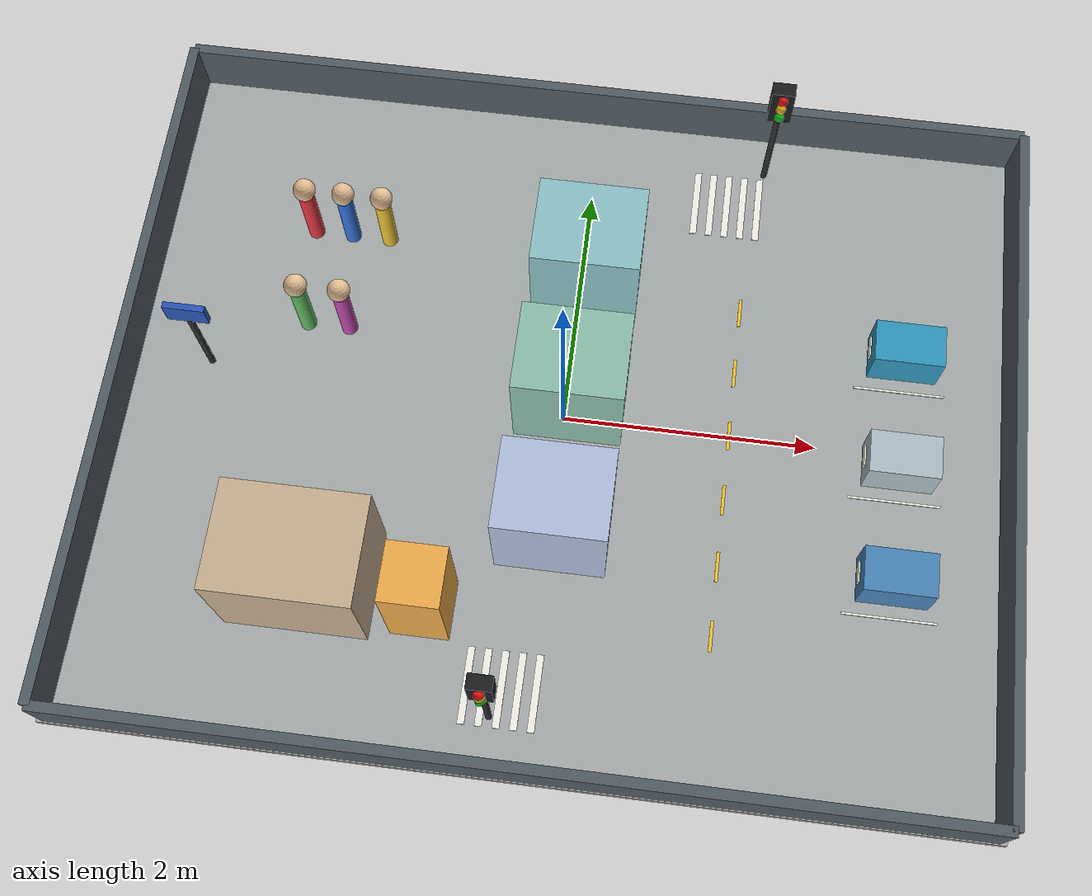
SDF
<?xml version="1.0" encoding="utf-8"?>
<sdf version="1.6">
  <world name="smart_community">
    <gravity>0 0 -9.8</gravity>
    <physics type="ode">
      <max_step_size>0.001</max_step_size>
      <real_time_update_rate>1000</real_time_update_rate>
    </physics>
    <scene>
      <ambient>0.65 0.65 0.65 1</ambient>
      <background>0.85 0.9 0.95 1</background>
    </scene>
    <light name="sun" type="directional">
      <pose>0 0 8 0 0 0</pose>
      <diffuse>0.85 0.85 0.85 1</diffuse>
      <direction>0.3 -0.3 -1</direction>
    </light>
    <model name="ground">
      <static>true</static>
      <pose>0 0 -0.03 0 0 0</pose>
      <link name="body">
        <collision name="collision">
          <geometry>
            <box>
              <size>7.1 5.7 0.06</size>
            </box>
          </geometry>
        </collision>
        <visual name="visual">
          <geometry>
            <box>
              <size>7.1 5.7 0.06</size>
            </box>
          </geometry>
          <material>
            <ambient>0.65 0.67 0.67 1</ambient>
            <diffuse>0.65 0.67 0.67 1</diffuse>
          </material>
        </visual>
      </link>
    </model>
    <model name="north_wall">
      <static>true</static>
      <pose>0 2.8 0.22 0 0 0</pose>
      <link name="body">
        <collision name="collision">
          <geometry>
            <box>
              <size>7 0.08 0.44</size>
            </box>
          </geometry>
        </collision>
        <visual name="visual">
          <geometry>
            <box>
              <size>7 0.08 0.44</size>
            </box>
          </geometry>
          <material>
            <ambient>0.32 0.36 0.39 1</ambient>
            <diffuse>0.32 0.36 0.39 1</diffuse>
          </material>
        </visual>
      </link>
    </model>
    <model name="south_wall">
      <static>true</static>
      <pose>0 -2.8 0.22 0 0 0</pose>
      <link name="body">
        <collision name="collision">
          <geometry>
            <box>
              <size>7 0.08 0.44</size>
            </box>
          </geometry>
        </collision>
        <visual name="visual">
          <geometry>
            <box>
              <size>7 0.08 0.44</size>
            </box>
          </geometry>
          <material>
            <ambient>0.32 0.36 0.39 1</ambient>
            <diffuse>0.32 0.36 0.39 1</diffuse>
          </material>
        </visual>
      </link>
    </model>
    <model name="west_wall">
      <static>true</static>
      <pose>-3.5 0 0.22 0 0 0</pose>
      <link name="body">
        <collision name="collision">
          <geometry>
            <box>
              <size>0.08 5.6 0.44</size>
            </box>
          </geometry>
        </collision>
        <visual name="visual">
          <geometry>
            <box>
              <size>0.08 5.6 0.44</size>
            </box>
          </geometry>
          <material>
            <ambient>0.32 0.36 0.39 1</ambient>
            <diffuse>0.32 0.36 0.39 1</diffuse>
          </material>
        </visual>
      </link>
    </model>
    <model name="east_wall">
      <static>true</static>
      <pose>3.5 0 0.22 0 0 0</pose>
      <link name="body">
        <collision name="collision">
          <geometry>
            <box>
              <size>0.08 5.6 0.44</size>
            </box>
          </geometry>
        </collision>
        <visual name="visual">
          <geometry>
            <box>
              <size>0.08 5.6 0.44</size>
            </box>
          </geometry>
          <material>
            <ambient>0.32 0.36 0.39 1</ambient>
            <diffuse>0.32 0.36 0.39 1</diffuse>
          </material>
        </visual>
      </link>
    </model>
    <model name="building_A">
      <static>true</static>
      <pose>0.05 1.25 0.48 0 0 0</pose>
      <link name="body">
        <collision name="collision">
          <geometry>
            <box>
              <size>0.85 0.7 0.96</size>
            </box>
          </geometry>
        </collision>
        <visual name="visual">
          <geometry>
            <box>
              <size>0.85 0.7 0.96</size>
            </box>
          </geometry>
          <material>
            <ambient>0.55 0.76 0.78 1</ambient>
            <diffuse>0.55 0.76 0.78 1</diffuse>
          </material>
        </visual>
      </link>
    </model>
    <model name="building_B">
      <static>true</static>
      <pose>0.05 0.18 0.48 0 0 0</pose>
      <link name="body">
        <collision name="collision">
          <geometry>
            <box>
              <size>0.85 0.7 0.96</size>
            </box>
          </geometry>
        </collision>
        <visual name="visual">
          <geometry>
            <box>
              <size>0.85 0.7 0.96</size>
            </box>
          </geometry>
          <material>
            <ambient>0.55 0.75 0.67 1</ambient>
            <diffuse>0.55 0.75 0.67 1</diffuse>
          </material>
        </visual>
      </link>
    </model>
    <model name="building_C">
      <static>true</static>
      <pose>0.05 -0.9 0.48 0 0 0</pose>
      <link name="body">
        <collision name="collision">
          <geometry>
            <box>
              <size>0.85 0.7 0.96</size>
            </box>
          </geometry>
        </collision>
        <visual name="visual">
          <geometry>
            <box>
              <size>0.85 0.7 0.96</size>
            </box>
          </geometry>
          <material>
            <ambient>0.69 0.75 0.87 1</ambient>
            <diffuse>0.69 0.75 0.87 1</diffuse>
          </material>
        </visual>
      </link>
    </model>
    <model name="building_D">
      <static>true</static>
      <pose>-1.78 -1.53 0.48 0 0 0</pose>
      <link name="body">
        <collision name="collision">
          <geometry>
            <box>
              <size>1.1 0.83 0.96</size>
            </box>
          </geometry>
        </collision>
        <visual name="visual">
          <geometry>
            <box>
              <size>1.1 0.83 0.96</size>
            </box>
          </geometry>
          <material>
            <ambient>0.78 0.69 0.57 1</ambient>
            <diffuse>0.78 0.69 0.57 1</diffuse>
          </material>
        </visual>
      </link>
    </model>
    <model name="utility_station">
      <static>true</static>
      <pose>-0.85 -1.65 0.48 0 0 0</pose>
      <link name="body">
        <collision name="collision">
          <geometry>
            <box>
              <size>0.45 0.45 0.96</size>
            </box>
          </geometry>
        </collision>
        <visual name="visual">
          <geometry>
            <box>
              <size>0.45 0.45 0.96</size>
            </box>
          </geometry>
          <material>
            <ambient>0.93 0.67 0.29 1</ambient>
            <diffuse>0.93 0.67 0.29 1</diffuse>
          </material>
        </visual>
      </link>
    </model>
    <model name="pedestrian_1_body">
      <static>true</static>
      <pose>-2.25 1.42 0.3 0 0 0</pose>
      <link name="body">
        <collision name="collision">
          <geometry>
            <cylinder>
              <radius>0.065</radius>
              <length>0.6</length>
            </cylinder>
          </geometry>
        </collision>
        <visual name="visual">
          <geometry>
            <cylinder>
              <radius>0.065</radius>
              <length>0.6</length>
            </cylinder>
          </geometry>
          <material>
            <ambient>0.9 0.22 0.25 1</ambient>
            <diffuse>0.9 0.22 0.25 1</diffuse>
          </material>
        </visual>
      </link>
    </model>
    <model name="pedestrian_1_head">
      <static>true</static>
      <pose>-2.25 1.42 0.68 0 0 0</pose>
      <link name="body">
        <visual name="visual">
          <geometry>
            <sphere>
              <radius>0.09</radius>
            </sphere>
          </geometry>
          <material>
            <ambient>0.9 0.75 0.58 1</ambient>
            <diffuse>0.9 0.75 0.58 1</diffuse>
          </material>
        </visual>
      </link>
    </model>
    <model name="pedestrian_2_body">
      <static>true</static>
      <pose>-1.94 1.42 0.3 0 0 0</pose>
      <link name="body">
        <collision name="collision">
          <geometry>
            <cylinder>
              <radius>0.065</radius>
              <length>0.6</length>
            </cylinder>
          </geometry>
        </collision>
        <visual name="visual">
          <geometry>
            <cylinder>
              <radius>0.065</radius>
              <length>0.6</length>
            </cylinder>
          </geometry>
          <material>
            <ambient>0.2 0.45 0.85 1</ambient>
            <diffuse>0.2 0.45 0.85 1</diffuse>
          </material>
        </visual>
      </link>
    </model>
    <model name="pedestrian_2_head">
      <static>true</static>
      <pose>-1.94 1.42 0.68 0 0 0</pose>
      <link name="body">
        <visual name="visual">
          <geometry>
            <sphere>
              <radius>0.09</radius>
            </sphere>
          </geometry>
          <material>
            <ambient>0.9 0.75 0.58 1</ambient>
            <diffuse>0.9 0.75 0.58 1</diffuse>
          </material>
        </visual>
      </link>
    </model>
    <model name="pedestrian_3_body">
      <static>true</static>
      <pose>-1.63 1.42 0.3 0 0 0</pose>
      <link name="body">
        <collision name="collision">
          <geometry>
            <cylinder>
              <radius>0.065</radius>
              <length>0.6</length>
            </cylinder>
          </geometry>
        </collision>
        <visual name="visual">
          <geometry>
            <cylinder>
              <radius>0.065</radius>
              <length>0.6</length>
            </cylinder>
          </geometry>
          <material>
            <ambient>0.92 0.76 0.19 1</ambient>
            <diffuse>0.92 0.76 0.19 1</diffuse>
          </material>
        </visual>
      </link>
    </model>
    <model name="pedestrian_3_head">
      <static>true</static>
      <pose>-1.63 1.42 0.68 0 0 0</pose>
      <link name="body">
        <visual name="visual">
          <geometry>
            <sphere>
              <radius>0.09</radius>
            </sphere>
          </geometry>
          <material>
            <ambient>0.9 0.75 0.58 1</ambient>
            <diffuse>0.9 0.75 0.58 1</diffuse>
          </material>
        </visual>
      </link>
    </model>
    <model name="pedestrian_4_body">
      <static>true</static>
      <pose>-2.16 0.58 0.3 0 0 0</pose>
      <link name="body">
        <collision name="collision">
          <geometry>
            <cylinder>
              <radius>0.065</radius>
              <length>0.6</length>
            </cylinder>
          </geometry>
        </collision>
        <visual name="visual">
          <geometry>
            <cylinder>
              <radius>0.065</radius>
              <length>0.6</length>
            </cylinder>
          </geometry>
          <material>
            <ambient>0.38 0.72 0.39 1</ambient>
            <diffuse>0.38 0.72 0.39 1</diffuse>
          </material>
        </visual>
      </link>
    </model>
    <model name="pedestrian_4_head">
      <static>true</static>
      <pose>-2.16 0.58 0.68 0 0 0</pose>
      <link name="body">
        <visual name="visual">
          <geometry>
            <sphere>
              <radius>0.09</radius>
            </sphere>
          </geometry>
          <material>
            <ambient>0.9 0.75 0.58 1</ambient>
            <diffuse>0.9 0.75 0.58 1</diffuse>
          </material>
        </visual>
      </link>
    </model>
    <model name="pedestrian_5_body">
      <static>true</static>
      <pose>-1.82 0.58 0.3 0 0 0</pose>
      <link name="body">
        <collision name="collision">
          <geometry>
            <cylinder>
              <radius>0.065</radius>
              <length>0.6</length>
            </cylinder>
          </geometry>
        </collision>
        <visual name="visual">
          <geometry>
            <cylinder>
              <radius>0.065</radius>
              <length>0.6</length>
            </cylinder>
          </geometry>
          <material>
            <ambient>0.75 0.29 0.67 1</ambient>
            <diffuse>0.75 0.29 0.67 1</diffuse>
          </material>
        </visual>
      </link>
    </model>
    <model name="pedestrian_5_head">
      <static>true</static>
      <pose>-1.82 0.58 0.68 0 0 0</pose>
      <link name="body">
        <visual name="visual">
          <geometry>
            <sphere>
              <radius>0.09</radius>
            </sphere>
          </geometry>
          <material>
            <ambient>0.9 0.75 0.58 1</ambient>
            <diffuse>0.9 0.75 0.58 1</diffuse>
          </material>
        </visual>
      </link>
    </model>
    <model name="car_1_body">
      <static>true</static>
      <pose>2.65 0.83 0.19 0 0 0</pose>
      <link name="body">
        <collision name="collision">
          <geometry>
            <box>
              <size>0.55 0.34 0.36</size>
            </box>
          </geometry>
        </collision>
        <visual name="visual">
          <geometry>
            <box>
              <size>0.55 0.34 0.36</size>
            </box>
          </geometry>
          <material>
            <ambient>0.19 0.59 0.74 1</ambient>
            <diffuse>0.19 0.59 0.74 1</diffuse>
          </material>
        </visual>
      </link>
    </model>
    <model name="car_1_plate_placeholder">
      <static>true</static>
      <pose>2.36 0.83 0.2 0 0 0</pose>
      <link name="body">
        <visual name="visual">
          <geometry>
            <box>
              <size>0.012 0.16 0.08</size>
            </box>
          </geometry>
          <material>
            <ambient>0.96 0.96 0.85 1</ambient>
            <diffuse>0.96 0.96 0.85 1</diffuse>
          </material>
        </visual>
      </link>
    </model>
    <model name="parking_1_line">
      <static>true</static>
      <pose>2.64 0.5599999999999999 0.004 0 0 0</pose>
      <link name="body">
        <visual name="visual">
          <geometry>
            <box>
              <size>0.72 0.018 0.008</size>
            </box>
          </geometry>
          <material>
            <ambient>0.95 0.95 0.9 1</ambient>
            <diffuse>0.95 0.95 0.9 1</diffuse>
          </material>
        </visual>
      </link>
    </model>
    <model name="car_2_body">
      <static>true</static>
      <pose>2.65 -0.1 0.19 0 0 0</pose>
      <link name="body">
        <collision name="collision">
          <geometry>
            <box>
              <size>0.55 0.34 0.36</size>
            </box>
          </geometry>
        </collision>
        <visual name="visual">
          <geometry>
            <box>
              <size>0.55 0.34 0.36</size>
            </box>
          </geometry>
          <material>
            <ambient>0.68 0.75 0.78 1</ambient>
            <diffuse>0.68 0.75 0.78 1</diffuse>
          </material>
        </visual>
      </link>
    </model>
    <model name="car_2_plate_placeholder">
      <static>true</static>
      <pose>2.36 -0.1 0.2 0 0 0</pose>
      <link name="body">
        <visual name="visual">
          <geometry>
            <box>
              <size>0.012 0.16 0.08</size>
            </box>
          </geometry>
          <material>
            <ambient>0.96 0.96 0.85 1</ambient>
            <diffuse>0.96 0.96 0.85 1</diffuse>
          </material>
        </visual>
      </link>
    </model>
    <model name="parking_2_line">
      <static>true</static>
      <pose>2.64 -0.37 0.004 0 0 0</pose>
      <link name="body">
        <visual name="visual">
          <geometry>
            <box>
              <size>0.72 0.018 0.008</size>
            </box>
          </geometry>
          <material>
            <ambient>0.95 0.95 0.9 1</ambient>
            <diffuse>0.95 0.95 0.9 1</diffuse>
          </material>
        </visual>
      </link>
    </model>
    <model name="car_3_body">
      <static>true</static>
      <pose>2.65 -1.03 0.19 0 0 0</pose>
      <link name="body">
        <collision name="collision">
          <geometry>
            <box>
              <size>0.55 0.34 0.36</size>
            </box>
          </geometry>
        </collision>
        <visual name="visual">
          <geometry>
            <box>
              <size>0.55 0.34 0.36</size>
            </box>
          </geometry>
          <material>
            <ambient>0.28 0.52 0.72 1</ambient>
            <diffuse>0.28 0.52 0.72 1</diffuse>
          </material>
        </visual>
      </link>
    </model>
    <model name="car_3_plate_placeholder">
      <static>true</static>
      <pose>2.36 -1.03 0.2 0 0 0</pose>
      <link name="body">
        <visual name="visual">
          <geometry>
            <box>
              <size>0.012 0.16 0.08</size>
            </box>
          </geometry>
          <material>
            <ambient>0.96 0.96 0.85 1</ambient>
            <diffuse>0.96 0.96 0.85 1</diffuse>
          </material>
        </visual>
      </link>
    </model>
    <model name="parking_3_line">
      <static>true</static>
      <pose>2.64 -1.3 0.004 0 0 0</pose>
      <link name="body">
        <visual name="visual">
          <geometry>
            <box>
              <size>0.72 0.018 0.008</size>
            </box>
          </geometry>
          <material>
            <ambient>0.95 0.95 0.9 1</ambient>
            <diffuse>0.95 0.95 0.9 1</diffuse>
          </material>
        </visual>
      </link>
    </model>
    <model name="north_signal_pole">
      <static>true</static>
      <pose>1.42 2.42 0.5 0 0 0</pose>
      <link name="body">
        <collision name="collision">
          <geometry>
            <cylinder>
              <radius>0.025</radius>
              <length>1.0</length>
            </cylinder>
          </geometry>
        </collision>
        <visual name="visual">
          <geometry>
            <cylinder>
              <radius>0.025</radius>
              <length>1.0</length>
            </cylinder>
          </geometry>
          <material>
            <ambient>0.16 0.17 0.18 1</ambient>
            <diffuse>0.16 0.17 0.18 1</diffuse>
          </material>
        </visual>
      </link>
    </model>
    <model name="north_signal_housing">
      <static>true</static>
      <pose>1.42 2.42 1.1 0 0 0</pose>
      <link name="body">
        <visual name="visual">
          <geometry>
            <box>
              <size>0.18 0.11 0.36</size>
            </box>
          </geometry>
          <material>
            <ambient>0.1 0.11 0.12 1</ambient>
            <diffuse>0.1 0.11 0.12 1</diffuse>
          </material>
        </visual>
      </link>
    </model>
    <model name="north_signal_red">
      <static>true</static>
      <pose>1.42 2.355 1.21 0 0 0</pose>
      <link name="body">
        <visual name="visual">
          <geometry>
            <sphere>
              <radius>0.04</radius>
            </sphere>
          </geometry>
          <material>
            <ambient>0.93 0.08 0.08 1</ambient>
            <diffuse>0.93 0.08 0.08 1</diffuse>
          </material>
        </visual>
      </link>
    </model>
    <model name="north_signal_yellow">
      <static>true</static>
      <pose>1.42 2.355 1.1 0 0 0</pose>
      <link name="body">
        <visual name="visual">
          <geometry>
            <sphere>
              <radius>0.04</radius>
            </sphere>
          </geometry>
          <material>
            <ambient>0.95 0.73 0.1 1</ambient>
            <diffuse>0.95 0.73 0.1 1</diffuse>
          </material>
        </visual>
      </link>
    </model>
    <model name="north_signal_green">
      <static>true</static>
      <pose>1.42 2.355 0.99 0 0 0</pose>
      <link name="body">
        <visual name="visual">
          <geometry>
            <sphere>
              <radius>0.04</radius>
            </sphere>
          </geometry>
          <material>
            <ambient>0.08 0.78 0.12 1</ambient>
            <diffuse>0.08 0.78 0.12 1</diffuse>
          </material>
        </visual>
      </link>
    </model>
    <model name="south_signal_pole">
      <static>true</static>
      <pose>-0.25 -2.4 0.5 0 0 0</pose>
      <link name="body">
        <collision name="collision">
          <geometry>
            <cylinder>
              <radius>0.025</radius>
              <length>1.0</length>
            </cylinder>
          </geometry>
        </collision>
        <visual name="visual">
          <geometry>
            <cylinder>
              <radius>0.025</radius>
              <length>1.0</length>
            </cylinder>
          </geometry>
          <material>
            <ambient>0.16 0.17 0.18 1</ambient>
            <diffuse>0.16 0.17 0.18 1</diffuse>
          </material>
        </visual>
      </link>
    </model>
    <model name="south_signal_housing">
      <static>true</static>
      <pose>-0.25 -2.4 1.1 0 0 0</pose>
      <link name="body">
        <visual name="visual">
          <geometry>
            <box>
              <size>0.18 0.11 0.36</size>
            </box>
          </geometry>
          <material>
            <ambient>0.1 0.11 0.12 1</ambient>
            <diffuse>0.1 0.11 0.12 1</diffuse>
          </material>
        </visual>
      </link>
    </model>
    <model name="south_signal_red">
      <static>true</static>
      <pose>-0.25 -2.465 1.21 0 0 0</pose>
      <link name="body">
        <visual name="visual">
          <geometry>
            <sphere>
              <radius>0.04</radius>
            </sphere>
          </geometry>
          <material>
            <ambient>0.93 0.08 0.08 1</ambient>
            <diffuse>0.93 0.08 0.08 1</diffuse>
          </material>
        </visual>
      </link>
    </model>
    <model name="south_signal_yellow">
      <static>true</static>
      <pose>-0.25 -2.465 1.1 0 0 0</pose>
      <link name="body">
        <visual name="visual">
          <geometry>
            <sphere>
              <radius>0.04</radius>
            </sphere>
          </geometry>
          <material>
            <ambient>0.95 0.73 0.1 1</ambient>
            <diffuse>0.95 0.73 0.1 1</diffuse>
          </material>
        </visual>
      </link>
    </model>
    <model name="south_signal_green">
      <static>true</static>
      <pose>-0.25 -2.465 0.99 0 0 0</pose>
      <link name="body">
        <visual name="visual">
          <geometry>
            <sphere>
              <radius>0.04</radius>
            </sphere>
          </geometry>
          <material>
            <ambient>0.08 0.78 0.12 1</ambient>
            <diffuse>0.08 0.78 0.12 1</diffuse>
          </material>
        </visual>
      </link>
    </model>
    <model name="direction_sign_pole">
      <static>true</static>
      <pose>-2.87 0.15 0.4 0 0 0</pose>
      <link name="body">
        <collision name="collision">
          <geometry>
            <cylinder>
              <radius>0.025</radius>
              <length>0.8</length>
            </cylinder>
          </geometry>
        </collision>
        <visual name="visual">
          <geometry>
            <cylinder>
              <radius>0.025</radius>
              <length>0.8</length>
            </cylinder>
          </geometry>
          <material>
            <ambient>0.2 0.2 0.2 1</ambient>
            <diffuse>0.2 0.2 0.2 1</diffuse>
          </material>
        </visual>
      </link>
    </model>
    <model name="direction_sign_panel">
      <static>true</static>
      <pose>-2.87 0.15 0.9 0 0 0</pose>
      <link name="body">
        <visual name="visual">
          <geometry>
            <box>
              <size>0.32 0.05 0.2</size>
            </box>
          </geometry>
          <material>
            <ambient>0.16 0.34 0.73 1</ambient>
            <diffuse>0.16 0.34 0.73 1</diffuse>
          </material>
        </visual>
      </link>
    </model>
    <model name="north_crosswalk_1">
      <static>true</static>
      <pose>0.87 2.08 0.004 0 0 0</pose>
      <link name="body">
        <visual name="visual">
          <geometry>
            <box>
              <size>0.055 0.58 0.008</size>
            </box>
          </geometry>
          <material>
            <ambient>0.95 0.95 0.91 1</ambient>
            <diffuse>0.95 0.95 0.91 1</diffuse>
          </material>
        </visual>
      </link>
    </model>
    <model name="south_crosswalk_1">
      <static>true</static>
      <pose>-0.45 -2.19 0.004 0 0 0</pose>
      <link name="body">
        <visual name="visual">
          <geometry>
            <box>
              <size>0.055 0.58 0.008</size>
            </box>
          </geometry>
          <material>
            <ambient>0.95 0.95 0.91 1</ambient>
            <diffuse>0.95 0.95 0.91 1</diffuse>
          </material>
        </visual>
      </link>
    </model>
    <model name="north_crosswalk_2">
      <static>true</static>
      <pose>1.0 2.08 0.004 0 0 0</pose>
      <link name="body">
        <visual name="visual">
          <geometry>
            <box>
              <size>0.055 0.58 0.008</size>
            </box>
          </geometry>
          <material>
            <ambient>0.95 0.95 0.91 1</ambient>
            <diffuse>0.95 0.95 0.91 1</diffuse>
          </material>
        </visual>
      </link>
    </model>
    <model name="south_crosswalk_2">
      <static>true</static>
      <pose>-0.32 -2.19 0.004 0 0 0</pose>
      <link name="body">
        <visual name="visual">
          <geometry>
            <box>
              <size>0.055 0.58 0.008</size>
            </box>
          </geometry>
          <material>
            <ambient>0.95 0.95 0.91 1</ambient>
            <diffuse>0.95 0.95 0.91 1</diffuse>
          </material>
        </visual>
      </link>
    </model>
    <model name="north_crosswalk_3">
      <static>true</static>
      <pose>1.13 2.08 0.004 0 0 0</pose>
      <link name="body">
        <visual name="visual">
          <geometry>
            <box>
              <size>0.055 0.58 0.008</size>
            </box>
          </geometry>
          <material>
            <ambient>0.95 0.95 0.91 1</ambient>
            <diffuse>0.95 0.95 0.91 1</diffuse>
          </material>
        </visual>
      </link>
    </model>
    <model name="south_crosswalk_3">
      <static>true</static>
      <pose>-0.19 -2.19 0.004 0 0 0</pose>
      <link name="body">
        <visual name="visual">
          <geometry>
            <box>
              <size>0.055 0.58 0.008</size>
            </box>
          </geometry>
          <material>
            <ambient>0.95 0.95 0.91 1</ambient>
            <diffuse>0.95 0.95 0.91 1</diffuse>
          </material>
        </visual>
      </link>
    </model>
    <model name="north_crosswalk_4">
      <static>true</static>
      <pose>1.26 2.08 0.004 0 0 0</pose>
      <link name="body">
        <visual name="visual">
          <geometry>
            <box>
              <size>0.055 0.58 0.008</size>
            </box>
          </geometry>
          <material>
            <ambient>0.95 0.95 0.91 1</ambient>
            <diffuse>0.95 0.95 0.91 1</diffuse>
          </material>
        </visual>
      </link>
    </model>
    <model name="south_crosswalk_4">
      <static>true</static>
      <pose>-0.06 -2.19 0.004 0 0 0</pose>
      <link name="body">
        <visual name="visual">
          <geometry>
            <box>
              <size>0.055 0.58 0.008</size>
            </box>
          </geometry>
          <material>
            <ambient>0.95 0.95 0.91 1</ambient>
            <diffuse>0.95 0.95 0.91 1</diffuse>
          </material>
        </visual>
      </link>
    </model>
    <model name="north_crosswalk_5">
      <static>true</static>
      <pose>1.3900000000000001 2.08 0.004 0 0 0</pose>
      <link name="body">
        <visual name="visual">
          <geometry>
            <box>
              <size>0.055 0.58 0.008</size>
            </box>
          </geometry>
          <material>
            <ambient>0.95 0.95 0.91 1</ambient>
            <diffuse>0.95 0.95 0.91 1</diffuse>
          </material>
        </visual>
      </link>
    </model>
    <model name="south_crosswalk_5">
      <static>true</static>
      <pose>0.07 -2.19 0.004 0 0 0</pose>
      <link name="body">
        <visual name="visual">
          <geometry>
            <box>
              <size>0.055 0.58 0.008</size>
            </box>
          </geometry>
          <material>
            <ambient>0.95 0.95 0.91 1</ambient>
            <diffuse>0.95 0.95 0.91 1</diffuse>
          </material>
        </visual>
      </link>
    </model>
    <model name="center_lane_mark_1">
      <static>true</static>
      <pose>1.32 -1.6 0.004 0 0 0</pose>
      <link name="body">
        <visual name="visual">
          <geometry>
            <box>
              <size>0.025 0.24 0.008</size>
            </box>
          </geometry>
          <material>
            <ambient>0.96 0.76 0.17 1</ambient>
            <diffuse>0.96 0.76 0.17 1</diffuse>
          </material>
        </visual>
      </link>
    </model>
    <model name="center_lane_mark_2">
      <static>true</static>
      <pose>1.32 -1.06 0.004 0 0 0</pose>
      <link name="body">
        <visual name="visual">
          <geometry>
            <box>
              <size>0.025 0.24 0.008</size>
            </box>
          </geometry>
          <material>
            <ambient>0.96 0.76 0.17 1</ambient>
            <diffuse>0.96 0.76 0.17 1</diffuse>
          </material>
        </visual>
      </link>
    </model>
    <model name="center_lane_mark_3">
      <static>true</static>
      <pose>1.32 -0.52 0.004 0 0 0</pose>
      <link name="body">
        <visual name="visual">
          <geometry>
            <box>
              <size>0.025 0.24 0.008</size>
            </box>
          </geometry>
          <material>
            <ambient>0.96 0.76 0.17 1</ambient>
            <diffuse>0.96 0.76 0.17 1</diffuse>
          </material>
        </visual>
      </link>
    </model>
    <model name="center_lane_mark_4">
      <static>true</static>
      <pose>1.32 0.020000000000000018 0.004 0 0 0</pose>
      <link name="body">
        <visual name="visual">
          <geometry>
            <box>
              <size>0.025 0.24 0.008</size>
            </box>
          </geometry>
          <material>
            <ambient>0.96 0.76 0.17 1</ambient>
            <diffuse>0.96 0.76 0.17 1</diffuse>
          </material>
        </visual>
      </link>
    </model>
    <model name="center_lane_mark_5">
      <static>true</static>
      <pose>1.32 0.56 0.004 0 0 0</pose>
      <link name="body">
        <visual name="visual">
          <geometry>
            <box>
              <size>0.025 0.24 0.008</size>
            </box>
          </geometry>
          <material>
            <ambient>0.96 0.76 0.17 1</ambient>
            <diffuse>0.96 0.76 0.17 1</diffuse>
          </material>
        </visual>
      </link>
    </model>
    <model name="center_lane_mark_6">
      <static>true</static>
      <pose>1.32 1.1 0.004 0 0 0</pose>
      <link name="body">
        <visual name="visual">
          <geometry>
            <box>
              <size>0.025 0.24 0.008</size>
            </box>
          </geometry>
          <material>
            <ambient>0.96 0.76 0.17 1</ambient>
            <diffuse>0.96 0.76 0.17 1</diffuse>
          </material>
        </visual>
      </link>
    </model>
  </world>
</sdf>
